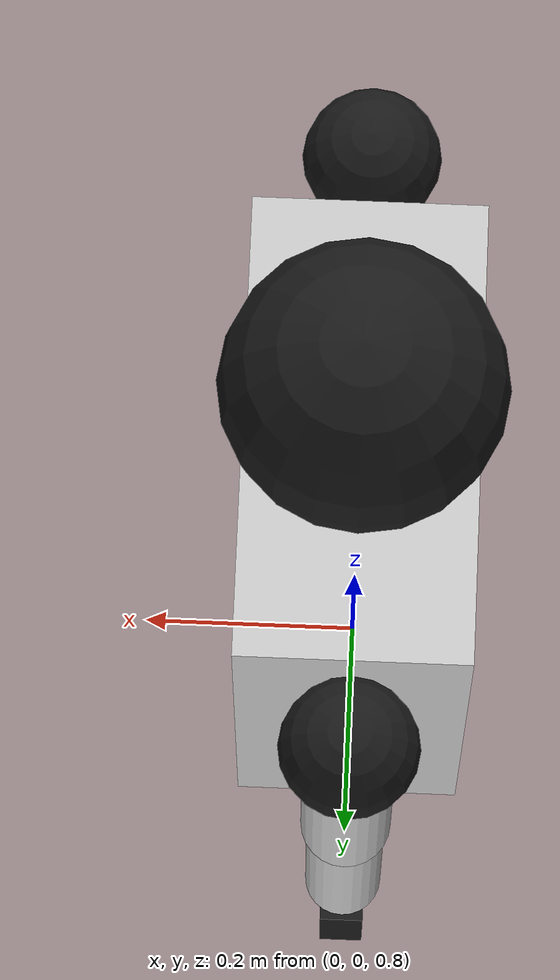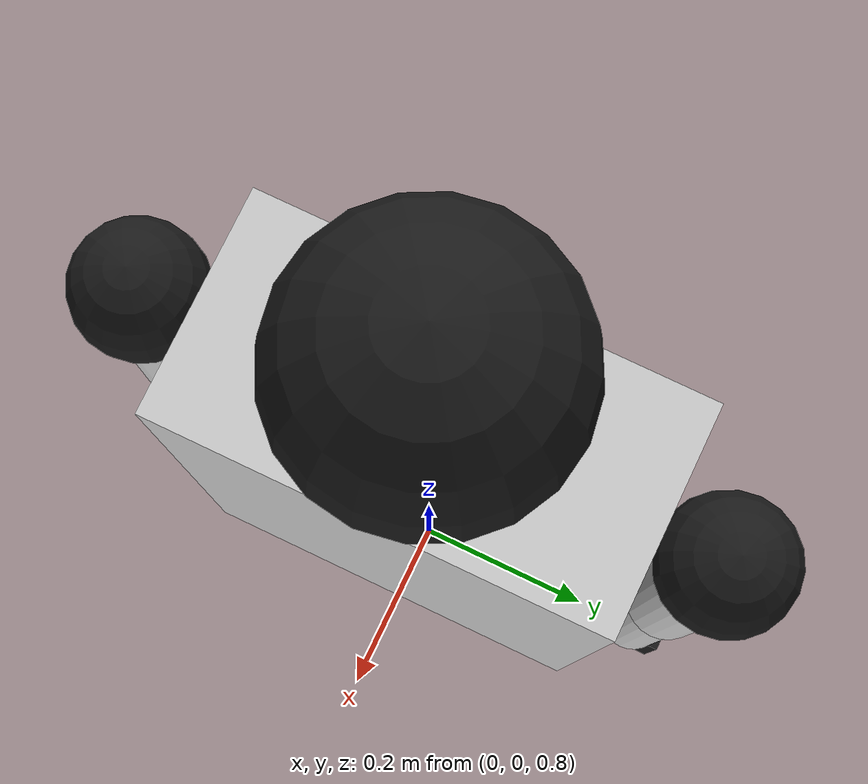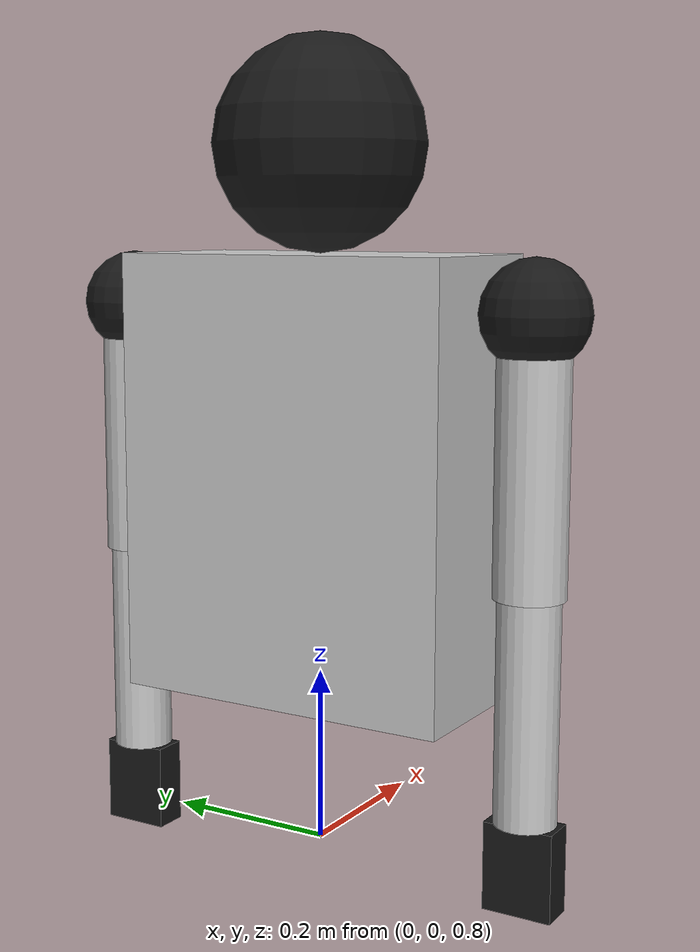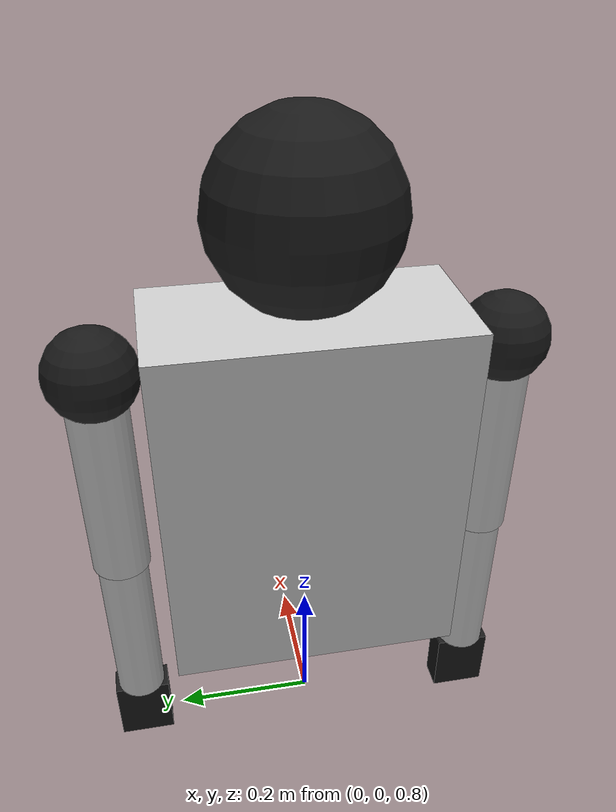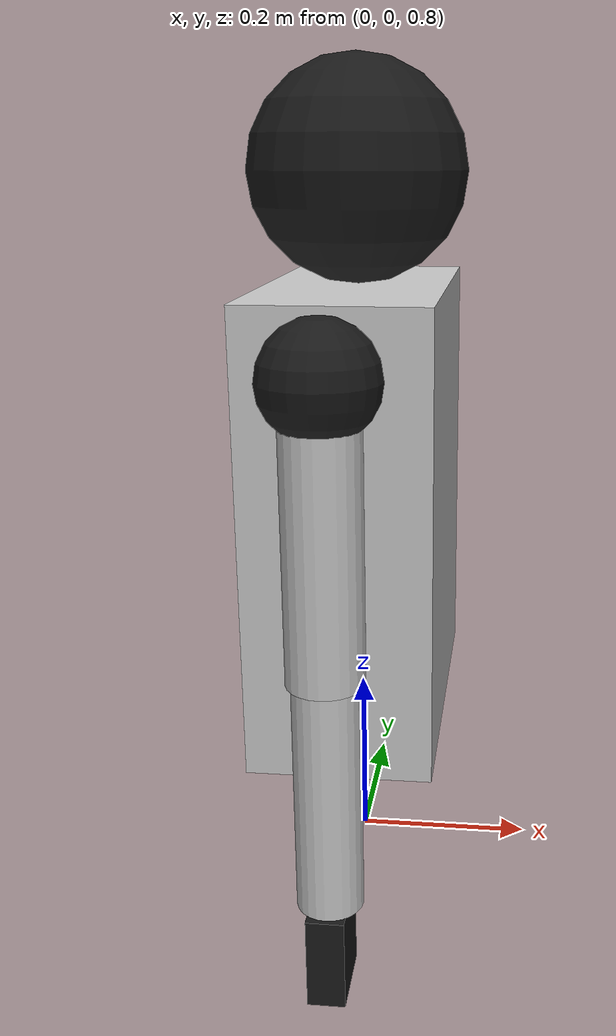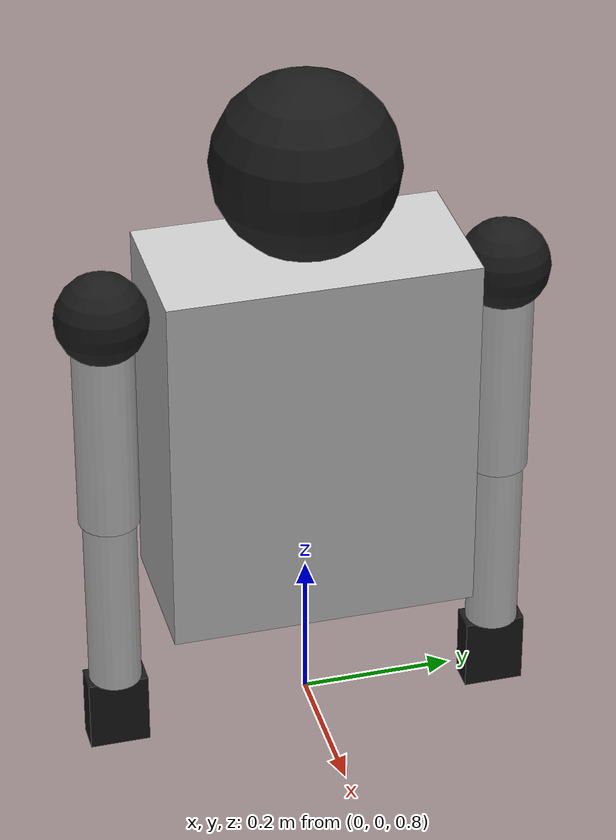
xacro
<?xml version="1.0"?>
<robot name="teslabot" xmlns:xacro="http://www.ros.org/wiki/xacro">

  <!-- ===== PROPERTIES ===== -->
  <!-- Sizes (metres) -->
  <xacro:property name="head_height"     value="1.6"/>   <!-- head position above the ground -->
  <xacro:property name="head_radius"     value="0.12"/>
  <xacro:property name="body_x"          value="0.2"/>   <!-- depth -->
  <xacro:property name="body_y"          value="0.4"/>   <!-- width -->
  <xacro:property name="body_z"          value="0.5"/>   <!-- height -->
  <xacro:property name="shoulder_radius" value="0.06"/>
  <xacro:property name="shoulder_offset" value="0.26"/>  <!-- sideways distance from body center -->
  <xacro:property name="upper_length"    value="0.3"/>
  <xacro:property name="upper_radius"    value="0.04"/>
  <xacro:property name="lower_length"    value="0.25"/>
  <xacro:property name="lower_radius"    value="0.035"/>
  <xacro:property name="hand_x"          value="0.04"/>
  <xacro:property name="hand_y"          value="0.08"/>
  <xacro:property name="hand_z"          value="0.1"/>

  <!-- Masses (kg) -->
  <xacro:property name="head_mass"     value="1.0"/>
  <xacro:property name="body_mass"     value="5.0"/>
  <xacro:property name="shoulder_mass" value="0.5"/>
  <xacro:property name="upper_mass"    value="1.0"/>
  <xacro:property name="lower_mass"    value="0.8"/>
  <xacro:property name="hand_mass"     value="0.3"/>

  <!-- ===== MATERIALS ===== -->
  <material name="grey">
    <color rgba="0.8 0.8 0.8 1"/>
  </material>
  <material name="black">
    <color rgba="0.1 0.1 0.1 1"/>
  </material>

  <!-- ===== INERTIA MACROS (standard formulas for solid shapes) ===== -->
  <xacro:macro name="inertial_box" params="mass x y z xyz">
    <inertial>
      <origin xyz="${xyz}" rpy="0 0 0"/>
      <mass value="${mass}"/>
      <inertia ixx="${mass*(y*y+z*z)/12}" ixy="0" ixz="0"
               iyy="${mass*(x*x+z*z)/12}" iyz="0"
               izz="${mass*(x*x+y*y)/12}"/>
    </inertial>
  </xacro:macro>

  <xacro:macro name="inertial_cylinder" params="mass r h xyz">
    <inertial>
      <origin xyz="${xyz}" rpy="0 0 0"/>
      <mass value="${mass}"/>
      <inertia ixx="${mass*(3*r*r+h*h)/12}" ixy="0" ixz="0"
               iyy="${mass*(3*r*r+h*h)/12}" iyz="0"
               izz="${mass*r*r/2}"/>
    </inertial>
  </xacro:macro>

  <xacro:macro name="inertial_sphere" params="mass r xyz">
    <inertial>
      <origin xyz="${xyz}" rpy="0 0 0"/>
      <mass value="${mass}"/>
      <inertia ixx="${2*mass*r*r/5}" ixy="0" ixz="0"
               iyy="${2*mass*r*r/5}" iyz="0"
               izz="${2*mass*r*r/5}"/>
    </inertial>
  </xacro:macro>

  <!-- ===== ARM MACRO: shoulder, upper arm, lower arm, hand. reflect = -1 for right, 1 for left ===== -->
  <xacro:macro name="arm" params="side reflect">

    <!-- Shoulder -->
    <link name="shoulder_${side}">
      <visual>
        <geometry>
          <sphere radius="${shoulder_radius}"/>
        </geometry>
        <material name="black"/>
      </visual>
      <collision>
        <geometry>
          <sphere radius="${shoulder_radius}"/>
        </geometry>
      </collision>
      <xacro:inertial_sphere mass="${shoulder_mass}" r="${shoulder_radius}" xyz="0 0 0"/>
    </link>

    <!-- Swings the arm forward and backward -->
    <joint name="body_to_shoulder_${side}" type="revolute">
      <parent link="body"/>
      <child link="shoulder_${side}"/>
      <origin xyz="0 ${reflect*shoulder_offset} ${-shoulder_radius}" rpy="0 0 0"/>
      <axis xyz="0 1 0"/>
      <limit lower="${-pi/2}" upper="${pi/2}" effort="50" velocity="2"/>
    </joint>

    <!-- Upper arm -->
    <link name="arm_upper_${side}">
      <visual>
        <geometry>
          <cylinder length="${upper_length}" radius="${upper_radius}"/>
        </geometry>
        <origin xyz="0 0 ${-upper_length/2}" rpy="0 0 0"/>
        <material name="grey"/>
      </visual>
      <collision>
        <geometry>
          <cylinder length="${upper_length}" radius="${upper_radius}"/>
        </geometry>
        <origin xyz="0 0 ${-upper_length/2}" rpy="0 0 0"/>
      </collision>
      <xacro:inertial_cylinder mass="${upper_mass}" r="${upper_radius}" h="${upper_length}" xyz="0 0 ${-upper_length/2}"/>
    </link>

    <!-- Lifts the arm sideways, away from the body -->
    <joint name="shoulder_to_arm_upper_${side}" type="revolute">
      <parent link="shoulder_${side}"/>
      <child link="arm_upper_${side}"/>
      <origin xyz="0 0 0" rpy="0 0 0"/>
      <axis xyz="${reflect} 0 0"/>
      <limit lower="-0.2" upper="${pi/2}" effort="50" velocity="2"/>
    </joint>

    <!-- Lower arm -->
    <link name="arm_lower_${side}">
      <visual>
        <geometry>
          <cylinder length="${lower_length}" radius="${lower_radius}"/>
        </geometry>
        <origin xyz="0 0 ${-lower_length/2}" rpy="0 0 0"/>
        <material name="grey"/>
      </visual>
      <collision>
        <geometry>
          <cylinder length="${lower_length}" radius="${lower_radius}"/>
        </geometry>
        <origin xyz="0 0 ${-lower_length/2}" rpy="0 0 0"/>
      </collision>
      <xacro:inertial_cylinder mass="${lower_mass}" r="${lower_radius}" h="${lower_length}" xyz="0 0 ${-lower_length/2}"/>
    </link>

    <!-- Elbow: bends the lower arm forward -->
    <joint name="arm_upper_to_lower_${side}" type="revolute">
      <parent link="arm_upper_${side}"/>
      <child link="arm_lower_${side}"/>
      <origin xyz="0 0 ${-upper_length}" rpy="0 0 0"/>
      <axis xyz="0 -1 0"/>
      <limit lower="0" upper="2.4" effort="30" velocity="2"/>
    </joint>

    <!-- Hand -->
    <link name="hand_${side}">
      <visual>
        <geometry>
          <box size="${hand_x} ${hand_y} ${hand_z}"/>
        </geometry>
        <origin xyz="0 0 ${-hand_z/2}" rpy="0 0 0"/>
        <material name="black"/>
      </visual>
      <collision>
        <geometry>
          <box size="${hand_x} ${hand_y} ${hand_z}"/>
        </geometry>
        <origin xyz="0 0 ${-hand_z/2}" rpy="0 0 0"/>
      </collision>
      <xacro:inertial_box mass="${hand_mass}" x="${hand_x}" y="${hand_y}" z="${hand_z}" xyz="0 0 ${-hand_z/2}"/>
    </link>

    <joint name="arm_lower_to_hand_${side}" type="fixed">
      <parent link="arm_lower_${side}"/>
      <child link="hand_${side}"/>
      <origin xyz="0 0 ${-lower_length}" rpy="0 0 0"/>
    </joint>

  </xacro:macro>

  <!-- ===== ROBOT ===== -->
  <!-- World: the fixed ground in Gazebo. Attaching to it pins the robot in place -->
  <link name="world"/>

  <!-- Head -->
  <link name="head">
    <visual>
      <geometry>
        <sphere radius="${head_radius}"/>
      </geometry>
      <material name="black"/>
    </visual>
    <collision>
      <geometry>
        <sphere radius="${head_radius}"/>
      </geometry>
    </collision>
    <xacro:inertial_sphere mass="${head_mass}" r="${head_radius}" xyz="0 0 0"/>
  </link>

  <joint name="world_to_head" type="fixed">
    <parent link="world"/>
    <child link="head"/>
    <origin xyz="0 0 ${head_height}" rpy="0 0 0"/>
  </joint>

  <!-- Body: hangs below the head -->
  <link name="body">
    <visual>
      <geometry>
        <box size="${body_x} ${body_y} ${body_z}"/>
      </geometry>
      <origin xyz="0 0 ${-body_z/2}" rpy="0 0 0"/>
      <material name="grey"/>
    </visual>
    <collision>
      <geometry>
        <box size="${body_x} ${body_y} ${body_z}"/>
      </geometry>
      <origin xyz="0 0 ${-body_z/2}" rpy="0 0 0"/>
    </collision>
    <xacro:inertial_box mass="${body_mass}" x="${body_x}" y="${body_y}" z="${body_z}" xyz="0 0 ${-body_z/2}"/>
  </link>

  <joint name="head_to_body" type="fixed">
    <parent link="head"/>
    <child link="body"/>
    <origin xyz="0 0 ${-head_radius}" rpy="0 0 0"/>
  </joint>

  <!-- Arms -->
  <xacro:arm side="right" reflect="-1"/>
  <xacro:arm side="left"  reflect="1"/>

    <!-- ===== ROS 2 CONTROL ===== -->
  <!-- One entry per controllable joint: we command position, and read position and velocity back -->
  <xacro:macro name="control_joint" params="name">
    <joint name="${name}">
      <command_interface name="position"/>
      <state_interface name="position"/>
      <state_interface name="velocity"/>
    </joint>
  </xacro:macro>

  <ros2_control name="GazeboSystem" type="system">
    <hardware>
      <plugin>gz_ros2_control/GazeboSimSystem</plugin>
    </hardware>
    <xacro:control_joint name="body_to_shoulder_right"/>
    <xacro:control_joint name="body_to_shoulder_left"/>
    <xacro:control_joint name="shoulder_to_arm_upper_right"/>
    <xacro:control_joint name="shoulder_to_arm_upper_left"/>
    <xacro:control_joint name="arm_upper_to_lower_right"/>
    <xacro:control_joint name="arm_upper_to_lower_left"/>
  </ros2_control>

  <gazebo reference="head">
    <sensor name="lidar" type="gpu_lidar">
      <pose>0 0 0 0 0 0</pose>
      <topic>scan</topic>
      <gz_frame_id>head</gz_frame_id>
      <update_rate>10</update_rate>
      <always_on>true</always_on>
      <visualize>true</visualize>
      <lidar>
        <scan>
          <horizontal>
            <samples>720</samples>
            <resolution>1</resolution>
            <min_angle>-3.14</min_angle>
            <max_angle>3.14</max_angle>
          </horizontal>
        </scan>
        <range>
          <min>0.1</min>
          <max>30.0</max>
          <resolution>0.01</resolution>
        </range>
      </lidar>
    </sensor>
  </gazebo>

  <!-- ===== DEPTH CAMERA ===== -->
<!-- Camera body: normal link frame (x forward), on the front of the head, tilted down 40° -->
<link name="camera_link"/>

<joint name="camera_joint" type="fixed">
  <parent link="head"/>
  <child link="camera_link"/>
  <origin xyz="0.12 0 0" rpy="0 0.7 0"/>
</joint>

<!-- Optical frame: same position, axes rotated to z forward, x right, y down -->
<link name="camera_link_optical"/>

<joint name="camera_optical_joint" type="fixed">
  <parent link="camera_link"/>
  <child link="camera_link_optical"/>
  <origin xyz="0 0 0" rpy="${-pi/2} 0 ${-pi/2}"/>
</joint>

<!-- Depth camera: color image, depth image, and point cloud in one sensor -->
<gazebo reference="camera_link">
  <sensor name="depth_camera" type="rgbd_camera">
    <pose>0 0 0 0 0 0</pose>
    <topic>depth_camera</topic>
    <gz_frame_id>camera_link</gz_frame_id>
    <update_rate>10</update_rate>
    <always_on>true</always_on>
    <visualize>true</visualize>
    <camera>
      <horizontal_fov>1.35</horizontal_fov>
      <image>
        <width>640</width>
        <height>480</height>
        <format>R8G8B8</format>
      </image>
      <clip>
        <near>0.05</near>
        <far>10</far>
      </clip>
      <depth_camera>
        <clip>
          <near>0.1</near>
          <far>10</far>
        </clip>
      </depth_camera>
    </camera>
  </sensor>
</gazebo>

  <!-- Gazebo plugin: starts the controller manager inside Gazebo, using our controller config -->
  <gazebo>
    <plugin filename="gz_ros2_control-system" name="gz_ros2_control::GazeboSimROS2ControlPlugin">
      <parameters>$(find gazebo_learning)/config/joint_controller.yaml</parameters>
    </plugin>
  </gazebo>

</robot>
